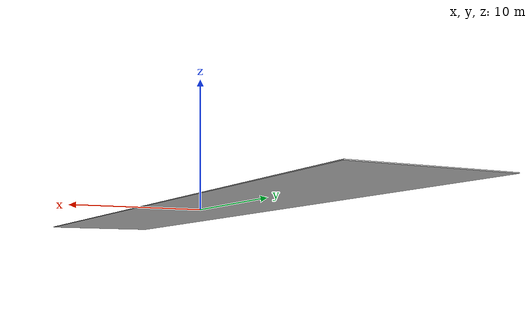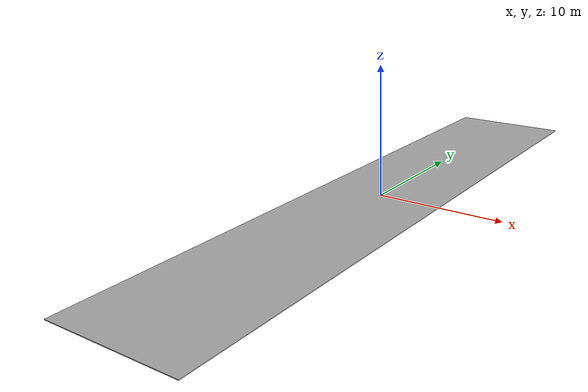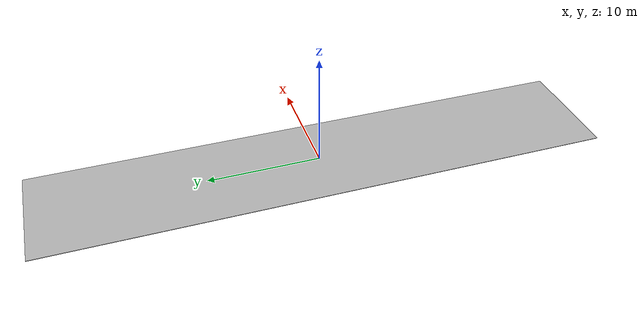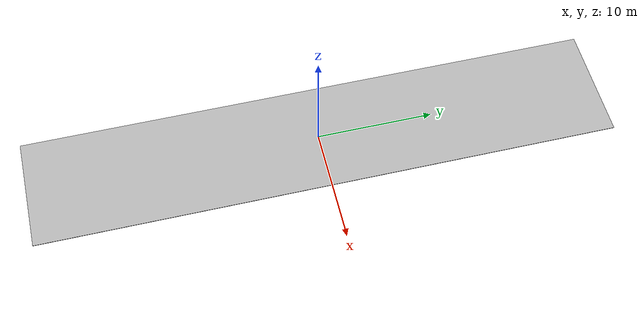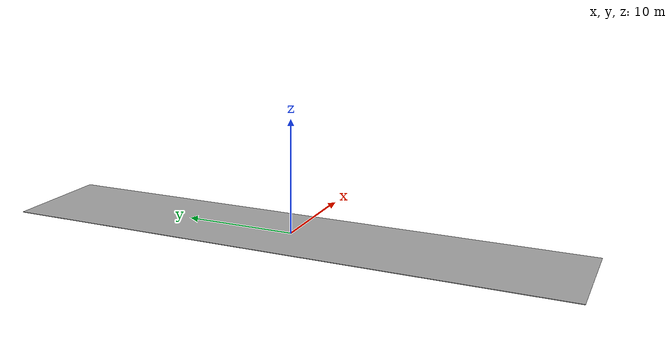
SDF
<?xml version="1.0" ?>
<sdf version='1.5'>
<model name='Acourse_floor'>
<static>true</static>
<link name="link">
  <pose frame=''>0 0 0 0 0 0</pose>
  <collision name="collision">
    <geometry>
      <box>
        <size>10 50 0.01</size>
      </box>
    </geometry>
  </collision>

  <visual name="visual">
    <geometry>
      <box>
        <size>10 50 .05</size>
      </box>
    </geometry>
    <material>
      <script>
        <uri>model://Acourse_floor/materials/scripts</uri>
        <uri>model://Acourse_floor/materials/textures</uri>
        <name>vrc/Acourse_floor</name>
      </script>
    </material>
  </visual>

</link>
</model>
</sdf>
